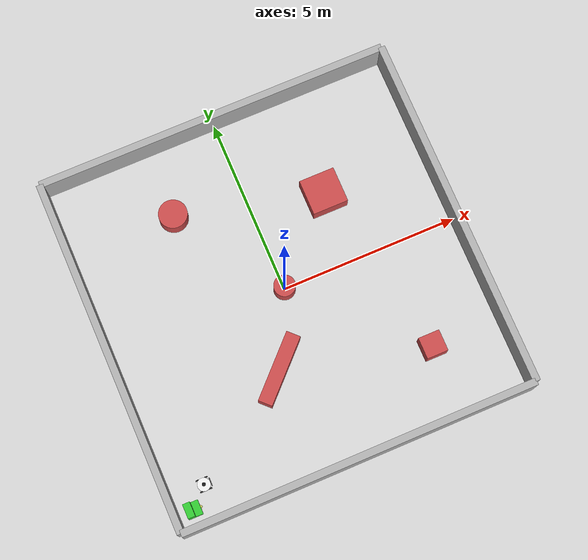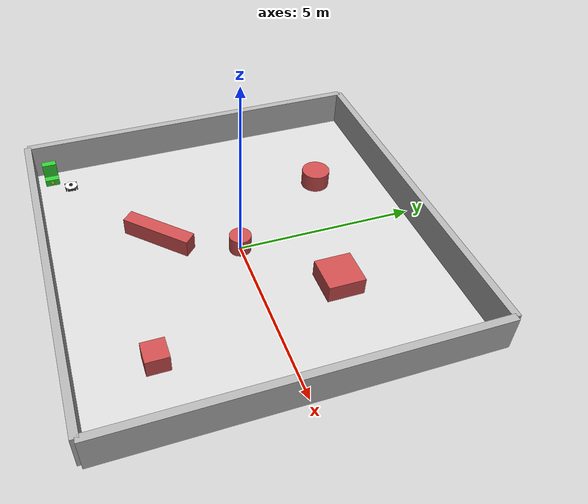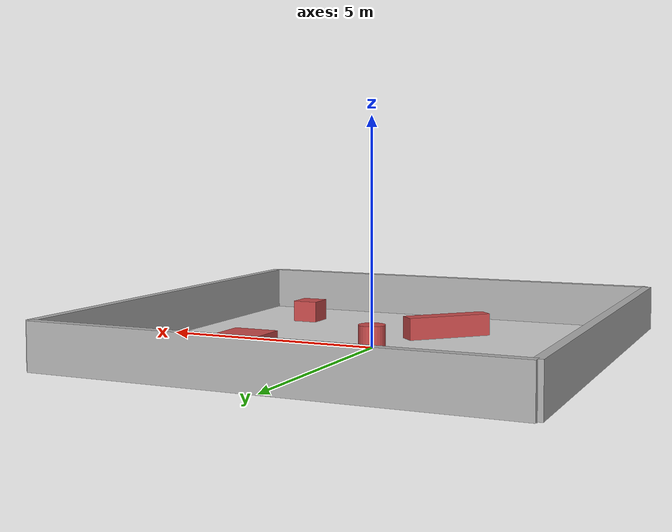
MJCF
<mujoco model="robot_vacuum_v3_advanced">
  <compiler angle="degree" coordinate="local" inertiafromgeom="true" autolimits="true"/>
  <option timestep="0.005" gravity="0 0 -9.81"/>

  <visual>
    <headlight ambient="0.4 0.4 0.4" diffuse="0.6 0.6 0.6" specular="0.2 0.2 0.2"/>
    <rgba haze="0.85 0.88 0.92 1"/>
    <global offwidth="1280" offheight="720"/>
  </visual>

  <asset>
    <texture name="tex_floor" type="2d" builtin="checker" rgb1="0.8 0.8 0.8" rgb2="0.9 0.9 0.9" width="512" height="512" mark="edge" markrgb="0.6 0.6 0.6"/>
    <material name="mat_floor" texture="tex_floor" texrepeat="10 10" reflectance="0.1"/>
    <material name="mat_wall" rgba="0.7 0.7 0.7 1" reflectance="0.2"/>
    <material name="mat_obstacle" rgba="0.8 0.3 0.3 1" reflectance="0.5"/>
    <material name="mat_robot_body" rgba="0.95 0.95 0.95 1" reflectance="0.7" shininess="0.9"/>
    <material name="mat_robot_dark" rgba="0.1 0.1 0.1 1" reflectance="0.3"/>
    <material name="mat_robot_light" rgba="0.2 0.8 1.0 1" emission="0.5"/>
    <material name="mat_charger" rgba="0.2 0.8 0.2 1" emission="0.3"/>
    <material name="mat_bumper" rgba="0.3 0.3 0.3 1" reflectance="0.1"/>
  </asset>

  <worldbody>
    <light pos="0 0 5" dir="0 0 -1" diffuse="0.8 0.8 0.8"/>
    <geom name="floor" type="plane" pos="0 0 0" size="5 5 0.1" material="mat_floor"/>

    <!-- Walls -->
    <geom name="wall_n" type="box" pos="0 5 0.5" size="5 0.1 0.5" material="mat_wall"/>
    <geom name="wall_s" type="box" pos="0 -5 0.5" size="5 0.1 0.5" material="mat_wall"/>
    <geom name="wall_e" type="box" pos="5 0 0.5" size="0.1 5 0.5" material="mat_wall"/>
    <geom name="wall_w" type="box" pos="-5 0 0.5" size="0.1 5 0.5" material="mat_wall"/>

    <!-- Charging Station (Visual Target) -->
    <body name="charger" pos="-4.5 -4.5 0">
        <geom name="charger_base" type="box" pos="0 0 0.1" size="0.2 0.2 0.1" material="mat_charger"/>
        <geom name="charger_tower" type="box" pos="-0.1 0 0.3" size="0.1 0.2 0.3" material="mat_charger"/>
        <site name="docking_port" pos="0.2 0 0.1" size="0.05" rgba="1 1 0 0.5"/>
    </body>

    <!-- Obstacles (Complex Layout) -->
    <geom name="obs1" type="box" pos="2 2 0.25" size="0.5 0.5 0.25" material="mat_obstacle"/>
    <geom name="obs2" type="cylinder" pos="-2 3 0.25" size="0.4 0.25" material="mat_obstacle"/>
    <geom name="obs3" type="box" pos="-1 -2 0.25" size="1 0.2 0.25" euler="0 0 45" material="mat_obstacle"/>
    <geom name="obs4" type="box" pos="3 -3 0.25" size="0.3 0.3 0.25" material="mat_obstacle"/>
    <geom name="obs5" type="cylinder" pos="0 0 0.25" size="0.3 0.25" material="mat_obstacle"/>

    <!-- Robot Vacuum V3 (Advanced) -->
    <body name="robot" pos="-4.0 -4.0 0.02" euler="0 0 0">
      <freejoint/>

      <!-- Chassis -->
      <geom name="chassis" type="cylinder" pos="0 0 0.06" size="0.18 0.04" material="mat_robot_body" mass="3"/>
      <geom name="lidar_tower" type="cylinder" pos="0 0 0.11" size="0.05 0.02" material="mat_robot_dark"/>
      <geom name="eye" type="box" pos="0.16 0 0.06" size="0.01 0.03 0.01" material="mat_robot_light"/>

      <!-- Bumper (Collision Sensor) -->
      <body name="bumper_front" pos="0.19 0 0.06">
          <geom name="bumper_geom" type="box" size="0.01 0.12 0.03" material="mat_bumper" solimp="0.9 0.95 0.001" solref="0.02 1"/>
          <site name="touch_bumper" pos="0 0 0" size="0.13 0.04 0.04" type="box" rgba="1 0 0 0"/>
      </body>

      <!-- 4-Wheel Drive System (Based on smart_car) -->
      <!-- Front Left -->
      <body name="wheel_fl" pos="0.12 0.16 0.05" euler="-90 0 0">
        <joint name="joint_fl" type="hinge" axis="0 0 1" damping="0.1"/>
        <geom name="geom_wheel_fl" type="cylinder" size="0.05 0.015" material="mat_robot_dark" friction="1.0"/>
      </body>
      <!-- Front Right -->
      <body name="wheel_fr" pos="0.12 -0.16 0.05" euler="-90 0 0">
        <joint name="joint_fr" type="hinge" axis="0 0 1" damping="0.1"/>
        <geom name="geom_wheel_fr" type="cylinder" size="0.05 0.015" material="mat_robot_dark" friction="1.0"/>
      </body>
      <!-- Back Left -->
      <body name="wheel_bl" pos="-0.12 0.16 0.05" euler="-90 0 0">
        <joint name="joint_bl" type="hinge" axis="0 0 1" damping="0.1"/>
        <geom name="geom_wheel_bl" type="cylinder" size="0.05 0.015" material="mat_robot_dark" friction="1.0"/>
      </body>
      <!-- Back Right -->
      <body name="wheel_br" pos="-0.12 -0.16 0.05" euler="-90 0 0">
        <joint name="joint_br" type="hinge" axis="0 0 1" damping="0.1"/>
        <geom name="geom_wheel_br" type="cylinder" size="0.05 0.015" material="mat_robot_dark" friction="1.0"/>
      </body>

      <!-- Sensors Sites -->
      <!-- 5-Direction Lidar for better mapping -->
      <site name="s_lidar_0" pos="0.19 0 0.11" zaxis="1 0 0" size="0.005" rgba="1 0 0 1"/>     <!-- Front -->
      <site name="s_lidar_l30" pos="0.18 0.1 0.11" zaxis="0.866 0.5 0" size="0.005" rgba="1 0 0 1"/> <!-- Left 30 -->
      <site name="s_lidar_r30" pos="0.18 -0.1 0.11" zaxis="0.866 -0.5 0" size="0.005" rgba="1 0 0 1"/> <!-- Right 30 -->
      <site name="s_lidar_l90" pos="0 0.19 0.11" zaxis="0 1 0" size="0.005" rgba="1 0 0 1"/>   <!-- Left 90 -->
      <site name="s_lidar_r90" pos="0 -0.19 0.11" zaxis="0 -1 0" size="0.005" rgba="1 0 0 1"/>   <!-- Right 90 -->

      <!-- Camera for Visual Recognition -->
      <camera name="robot_cam" pos="0.18 0 0.15" euler="0 0 0" fovy="90"/>

      <!-- Cliff Sensors -->
      <site name="s_cliff_f" pos="0.19 0 0.02" zaxis="0 0 -1" size="0.005" rgba="0 0 1 1"/>
      <site name="s_cliff_l" pos="0.1 0.15 0.02" zaxis="0 0 -1" size="0.005" rgba="0 0 1 1"/>
      <site name="s_cliff_r" pos="0.1 -0.15 0.02" zaxis="0 0 -1" size="0.005" rgba="0 0 1 1"/>
    </body>
  </worldbody>

  <actuator>
    <motor name="act_fl" joint="joint_fl" gear="50" ctrlrange="-1 1"/>
    <motor name="act_fr" joint="joint_fr" gear="50" ctrlrange="-1 1"/>
    <motor name="act_bl" joint="joint_bl" gear="50" ctrlrange="-1 1"/>
    <motor name="act_br" joint="joint_br" gear="50" ctrlrange="-1 1"/>
  </actuator>

  <sensor>
    <rangefinder name="lidar_0" site="s_lidar_0"/>
    <rangefinder name="lidar_l30" site="s_lidar_l30"/>
    <rangefinder name="lidar_r30" site="s_lidar_r30"/>
    <rangefinder name="lidar_l90" site="s_lidar_l90"/>
    <rangefinder name="lidar_r90" site="s_lidar_r90"/>

    <rangefinder name="cliff_f" site="s_cliff_f"/>
    <rangefinder name="cliff_l" site="s_cliff_l"/>
    <rangefinder name="cliff_r" site="s_cliff_r"/>

    <touch name="bumper_touch" site="touch_bumper"/>
  </sensor>
</mujoco>
